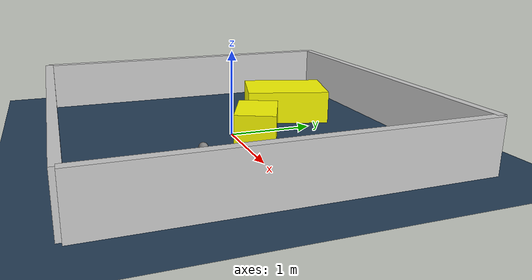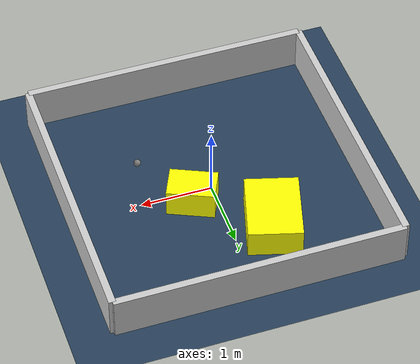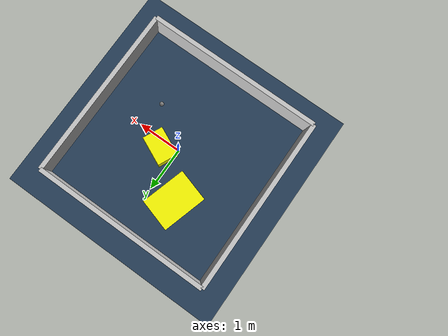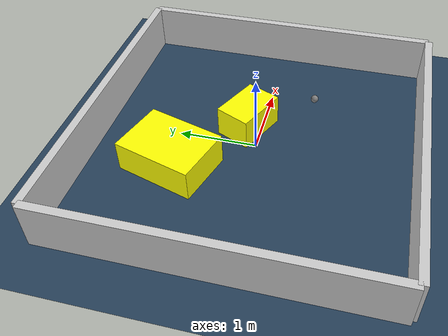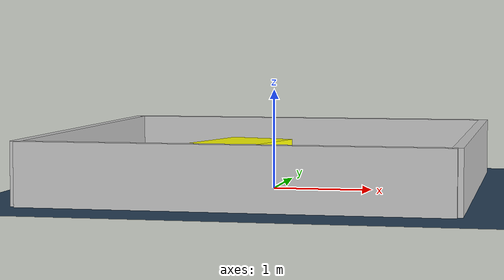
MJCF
<?xml version="1.0" ?>
<mujoco model="generated_environment">
  <option timestep="0.01" integrator="RK4" cone="elliptic"/>
  <default>
    <geom density="1"/>
  </default>
  <asset>
    <texture builtin="gradient" height="3072" rgb1="0.3 0.5 0.7" rgb2="0 0 0" type="skybox" width="512"/>
    <texture builtin="checker" height="300" mark="edge" markrgb="0.8 0.8 0.8" name="groundplane" rgb1="0.2 0.3 0.4" rgb2="0.1 0.2 0.3" type="2d" width="300"/>
    <material name="groundplane" reflectance="0.2" texrepeat="5 5" texture="groundplane" texuniform="true"/>
    <material name="robot" rgba="0.0 1.0 0.0 1"/>
  </asset>
  <worldbody>
    <light dir="0 0 -1" directional="true" pos="0 0 1.5"/>
    <geom condim="4" friction="1.0 0.005 0.001" material="groundplane" name="floor" size="0 0 0.05" type="plane"/>
    <body name="walls">
      <geom name="wall_1" condim="4" pos="-2.0 0.0 0.3" rgba="0.800000011920929 0.800000011920929 0.800000011920929 1.0" size="0.05 2.0 0.3" type="box"/>
      <geom name="wall_2" condim="4" pos="2.0 0.0 0.3" rgba="0.800000011920929 0.800000011920929 0.800000011920929 1.0" size="0.05 2.0 0.3" type="box"/>
      <geom name="wall_3" condim="4" pos="0.0 -2.0 0.3" rgba="0.800000011920929 0.800000011920929 0.800000011920929 1.0" size="2.0 0.05 0.3" type="box"/>
      <geom name="wall_4" condim="4" pos="0.0 2.0 0.3" rgba="0.800000011920929 0.800000011920929 0.800000011920929 1.0" size="2.0 0.05 0.3" type="box"/>
    </body>
    <body name="robot">
      <joint name="joint_x" type="slide" pos="0 0 0" axis="1 0 0"/>
      <joint name="joint_y" type="slide" pos="0 0 0" axis="0 1 0"/>
      <geom name="robot" type="sphere" pos="0.868201326498788 -0.5998294563626083 0.2" size="0.05" mass="5." friction="1.0 0.005 0.0001" condim="4"/>
      <site name="sensor_ball"/>
    </body>
    <body name="obstacle_1_movable">
      <geom name="obstacle_1_movable" condim="4" pos="0.333235077105726 0.18174610069917363 0.2" euler="0 0 335.2260502483828" friction="1.0 0.005 0.001" rgba="1 1 0 1" size="0.3311431862519059 0.2306561639930207 0.2" type="box" mass="0.1"/>
      <joint type="free"/>
    </body>
    <body name="obstacle_2_movable">
      <geom name="obstacle_2_movable" condim="4" pos="-0.5557793648047127 0.9277732658397437 0.2" euler="0 0 343.59915019069325" friction="1.0 0.005 0.001" rgba="1 1 0 1" size="0.36958904680170973 0.50711296956886 0.2" type="box" mass="0.1"/>
      <joint type="free"/>
    </body>
  </worldbody>
  <actuator>
    <motor name="actuator_x" joint="joint_x" gear="1" ctrlrange="-1 1"/>
    <motor name="actuator_y" joint="joint_y" gear="1" ctrlrange="-1 1"/>
  </actuator>
</mujoco>
